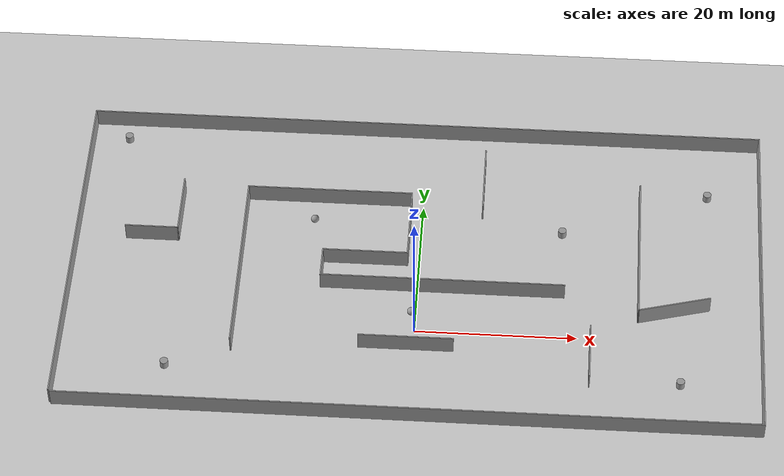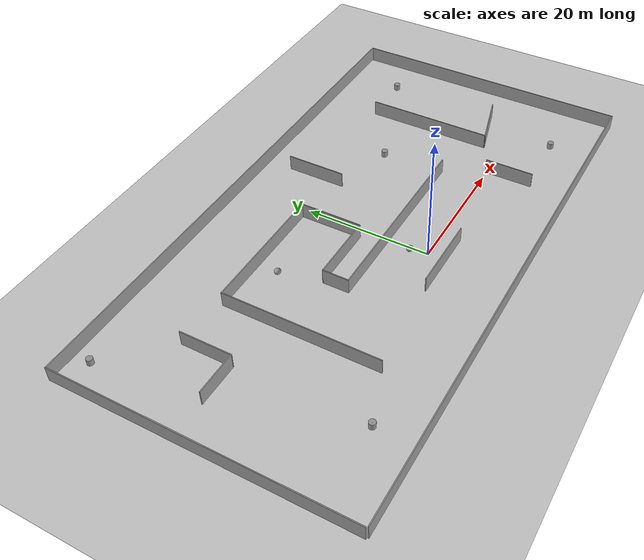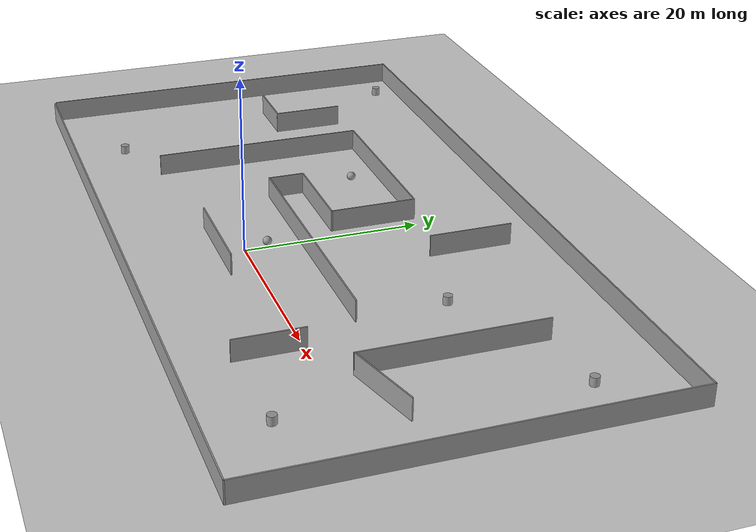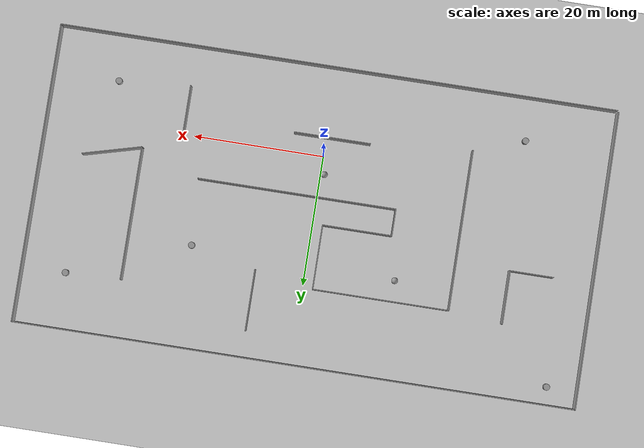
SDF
<sdf version="1.7">
 <world name="default">
  <light name="sun" type="directional">
   <pose>0 0 10 0 -0 0</pose>
   <diffuse>0.8 0.8 0.8 1</diffuse>
   <specular>0.2 0.2 0.2 1</specular>
   <attenuation>
    <range>1000</range>
    <constant>0.9</constant>
    <linear>0.01</linear>
    <quadratic>0.001</quadratic>
   </attenuation>
   <direction>-0.5 0.1 -0.9</direction>
   <spot><inner_angle>0</inner_angle><outer_angle>0</outer_angle><falloff>0</falloff></spot>
  </light>
  <model name="ground_plane">
   <static>1</static>
   <link name="link">
    <collision name="collision">
     <geometry><plane><normal>0 0 1</normal><size>100 100</size></plane></geometry>
     <surface><friction><ode><mu>100</mu><mu2>50</mu2></ode></friction></surface>
    </collision>
    <visual name="visual">
     <cast_shadows>0</cast_shadows>
     <geometry><plane><normal>0 0 1</normal><size>100 100</size></plane></geometry>
     <material>
      <script><uri>file://media/materials/scripts/gazebo.material</uri><name>Gazebo/Grey</name></script>
     </material>
    </visual>
   </link>
  </model>
  <gravity>0 0 -9.8</gravity>
  <magnetic_field>6e-06 2.3e-05 -4.2e-05</magnetic_field>
  <atmosphere type="adiabatic"/>
  <physics type="ode">
   <max_step_size>0.001</max_step_size>
   <real_time_factor>1</real_time_factor>
   <real_time_update_rate>1000</real_time_update_rate>
  </physics>
  <scene><ambient>0.4 0.4 0.4 1</ambient><background>0.7 0.7 0.7 1</background><shadows>1</shadows></scene>
  <audio><device>default</device></audio>
  <spherical_coordinates>
   <surface_model>EARTH_WGS84</surface_model>
   <latitude_deg>0</latitude_deg>
   <longitude_deg>0</longitude_deg>
   <elevation>0</elevation>
   <heading_deg>0</heading_deg>
  </spherical_coordinates>
  <model name="unit_cylinder">
   <pose>-30.212 -7.08888 0.499993 -3e-06 3e-06 0</pose>
   <link name="link">
    <inertial>
     <mass>1</mass>
     <inertia><ixx>0.145833</ixx><ixy>0</ixy><ixz>0</ixz><iyy>0.145833</iyy><iyz>0</iyz><izz>0.125</izz></inertia>
    </inertial>
    <collision name="collision">
     <geometry><cylinder><radius>0.5</radius><length>1</length></cylinder></geometry>
    </collision>
    <visual name="visual">
     <geometry><cylinder><radius>0.5</radius><length>1</length></cylinder></geometry>
     <material>
      <script><name>Gazebo/Grey</name><uri>file://media/materials/scripts/gazebo.material</uri></script>
     </material>
    </visual>
   </link>
  </model>
  <model name="unit_cylinder_0">
   <pose>17.7493 16.5587 0.499997 3e-06 -3e-06 0</pose>
   <link name="link">
    <inertial>
     <mass>1</mass>
     <inertia><ixx>0.145833</ixx><ixy>0</ixy><ixz>0</ixz><iyy>0.145833</iyy><iyz>0</iyz><izz>0.125</izz></inertia>
    </inertial>
    <collision name="collision">
     <geometry><cylinder><radius>0.5</radius><length>1</length></cylinder></geometry>
    </collision>
    <visual name="visual">
     <geometry><cylinder><radius>0.5</radius><length>1</length></cylinder></geometry>
     <material>
      <script><name>Gazebo/Grey</name><uri>file://media/materials/scripts/gazebo.material</uri></script>
     </material>
    </visual>
   </link>
  </model>
  <model name="unit_cylinder_1">
   <pose>32.7291 -6.60218 0.499992 -3e-06 3e-06 0</pose>
   <link name="link">
    <inertial>
     <mass>1</mass>
     <inertia><ixx>0.145833</ixx><ixy>0</ixy><ixz>0</ixz><iyy>0.145833</iyy><iyz>0</iyz><izz>0.125</izz></inertia>
    </inertial>
    <collision name="collision">
     <geometry><cylinder><radius>0.5</radius><length>1</length></cylinder></geometry>
    </collision>
    <visual name="visual">
     <geometry><cylinder><radius>0.5</radius><length>1</length></cylinder></geometry>
     <material>
      <script><name>Gazebo/Grey</name><uri>file://media/materials/scripts/gazebo.material</uri></script>
     </material>
    </visual>
   </link>
  </model>
  <model name="unit_cylinder_2">
   <pose>36.0783 23.6647 0.499992 -3e-06 3e-06 0</pose>
   <link name="link">
    <inertial>
     <mass>1</mass>
     <inertia><ixx>0.145833</ixx><ixy>0</ixy><ixz>0</ixz><iyy>0.145833</iyy><iyz>0</iyz><izz>0.125</izz></inertia>
    </inertial>
    <collision name="collision">
     <geometry><cylinder><radius>0.5</radius><length>1</length></cylinder></geometry>
    </collision>
    <visual name="visual">
     <geometry><cylinder><radius>0.5</radius><length>1</length></cylinder></geometry>
     <material>
      <script><name>Gazebo/Grey</name><uri>file://media/materials/scripts/gazebo.material</uri></script>
     </material>
    </visual>
   </link>
  </model>
  <model name="maze1.world">
   <pose>-0.366336 9.28177 0 0 -0 0</pose>
   <link name="Wall_0">
    <collision name="Wall_0_Collision">
     <geometry><box><size>45.75 0.15 2.5</size></box></geometry>
     <pose>0 0 1.25 0 -0 0</pose>
    </collision>
    <visual name="Wall_0_Visual">
     <pose>0 0 1.25 0 -0 0</pose>
     <geometry><box><size>45.75 0.15 2.5</size></box></geometry>
     <material>
      <script><uri>file://media/materials/scripts/gazebo.material</uri><name>Gazebo/Grey</name></script>
      <ambient>1 1 1 1</ambient>
     </material>
     <meta><layer>0</layer></meta>
    </visual>
    <pose>-43.05 0.125 0 0 -0 1.5708</pose>
   </link>
   <link name="Wall_1">
    <collision name="Wall_1_Collision">
     <geometry><box><size>86.25 0.15 2.5</size></box></geometry>
     <pose>0 0 1.25 0 -0 0</pose>
    </collision>
    <visual name="Wall_1_Visual">
     <pose>0 0 1.25 0 -0 0</pose>
     <geometry><box><size>86.25 0.15 2.5</size></box></geometry>
     <material>
      <script><uri>file://media/materials/scripts/gazebo.material</uri><name>Gazebo/Grey</name></script>
      <ambient>1 1 1 1</ambient>
     </material>
     <meta><layer>0</layer></meta>
    </visual>
    <pose>-3e-06 22.925 0 0 -0 0</pose>
   </link>
   <link name="Wall_10">
    <collision name="Wall_10_Collision">
     <geometry><box><size>30.5 0.15 2.5</size></box></geometry>
     <pose>0 0 1.25 0 -0 0</pose>
    </collision>
    <visual name="Wall_10_Visual">
     <pose>0 0 1.25 0 -0 0</pose>
     <geometry><box><size>30.5 0.15 2.5</size></box></geometry>
     <material>
      <script><uri>file://media/materials/scripts/gazebo.material</uri><name>Gazebo/Grey</name></script>
      <ambient>1 1 1 1</ambient>
     </material>
     <meta><layer>0</layer></meta>
    </visual>
    <pose>3.42051 -2.84481 0 0 -0 0</pose>
   </link>
   <link name="Wall_12">
    <collision name="Wall_12_Collision">
     <geometry><box><size>20.5 0.15 2.5</size></box></geometry>
     <pose>0 0 1.25 0 -0 0</pose>
    </collision>
    <visual name="Wall_12_Visual">
     <pose>0 0 1.25 0 -0 0</pose>
     <geometry><box><size>20.5 0.15 2.5</size></box></geometry>
     <material>
      <script><uri>file://media/materials/scripts/gazebo.material</uri><name>Gazebo/Grey</name></script>
      <ambient>1 1 1 1</ambient>
     </material>
     <meta><layer>0</layer></meta>
    </visual>
    <pose>27.8289 3.92957 0 0 -0 -1.5708</pose>
   </link>
   <link name="Wall_13">
    <collision name="Wall_13_Collision">
     <geometry><box><size>9.25 0.15 2.5</size></box></geometry>
     <pose>0 0 1.25 0 -0 0</pose>
    </collision>
    <visual name="Wall_13_Visual">
     <pose>0 0 1.25 0 -0 0</pose>
     <geometry><box><size>9.25 0.15 2.5</size></box></geometry>
     <material>
      <script><uri>file://media/materials/scripts/gazebo.material</uri><name>Gazebo/Grey</name></script>
      <ambient>1 1 1 1</ambient>
     </material>
     <meta><layer>0</layer></meta>
    </visual>
    <pose>32.2239 -5.0678 0 0 -0 0.261799</pose>
   </link>
   <link name="Wall_2">
    <collision name="Wall_2_Collision">
     <geometry><box><size>46 0.15 2.5</size></box></geometry>
     <pose>0 0 1.25 0 -0 0</pose>
    </collision>
    <visual name="Wall_2_Visual">
     <pose>0 0 1.25 0 -0 0</pose>
     <geometry><box><size>46 0.15 2.5</size></box></geometry>
     <material>
      <script><uri>file://media/materials/scripts/gazebo.material</uri><name>Gazebo/Grey</name></script>
      <ambient>1 1 1 1</ambient>
     </material>
     <meta><layer>0</layer></meta>
    </visual>
    <pose>43.05 0 0 0 -0 -1.5708</pose>
   </link>
   <link name="Wall_27">
    <collision name="Wall_27_Collision">
     <geometry><box><size>6.75 0.15 2.5</size></box></geometry>
     <pose>0 0 1.25 0 -0 0</pose>
    </collision>
    <visual name="Wall_27_Visual">
     <pose>0 0 1.25 0 -0 0</pose>
     <geometry><box><size>6.75 0.15 2.5</size></box></geometry>
     <material>
      <script><uri>file://media/materials/scripts/gazebo.material</uri><name>Gazebo/Grey</name></script>
      <ambient>1 1 1 1</ambient>
     </material>
     <meta><layer>0</layer></meta>
    </visual>
    <pose>-33.5889 3.71509 0 0 -0 0</pose>
   </link>
   <link name="Wall_28">
    <collision name="Wall_28_Collision">
     <geometry><box><size>8.25 0.15 2.5</size></box></geometry>
     <pose>0 0 1.25 0 -0 0</pose>
    </collision>
    <visual name="Wall_28_Visual">
     <pose>0 0 1.25 0 -0 0</pose>
     <geometry><box><size>8.25 0.15 2.5</size></box></geometry>
     <material>
      <script><uri>file://media/materials/scripts/gazebo.material</uri><name>Gazebo/Grey</name></script>
      <ambient>1 1 1 1</ambient>
     </material>
     <meta><layer>0</layer></meta>
    </visual>
    <pose>-30.2889 7.76509 0 0 -0 1.5708</pose>
   </link>
   <link name="Wall_3">
    <collision name="Wall_3_Collision">
     <geometry><box><size>86 0.15 2.5</size></box></geometry>
     <pose>0 0 1.25 0 -0 0</pose>
    </collision>
    <visual name="Wall_3_Visual">
     <pose>0 0 1.25 0 -0 0</pose>
     <geometry><box><size>86 0.15 2.5</size></box></geometry>
     <material>
      <script><uri>file://media/materials/scripts/gazebo.material</uri><name>Gazebo/Grey</name></script>
      <ambient>1 1 1 1</ambient>
     </material>
     <meta><layer>0</layer></meta>
    </visual>
    <pose>0.124997 -22.925 0 0 -0 3.14159</pose>
   </link>
   <link name="Wall_30">
    <collision name="Wall_30_Collision">
     <geometry><box><size>11.75 0.15 2.5</size></box></geometry>
     <pose>0 0 1.25 0 -0 0</pose>
    </collision>
    <visual name="Wall_30_Visual">
     <pose>0 0 1.25 0 -0 0</pose>
     <geometry><box><size>11.75 0.15 2.5</size></box></geometry>
     <material>
      <script><uri>file://media/materials/scripts/gazebo.material</uri><name>Gazebo/Grey</name></script>
      <ambient>1 1 1 1</ambient>
     </material>
     <meta><layer>0</layer></meta>
    </visual>
    <pose>-0.569781 -12.0856 0 0 -0 0</pose>
   </link>
   <link name="Wall_32">
    <collision name="Wall_32_Collision">
     <geometry><box><size>9.5 0.15 2.5</size></box></geometry>
     <pose>0 0 1.25 0 -0 0</pose>
    </collision>
    <visual name="Wall_32_Visual">
     <pose>0 0 1.25 0 -0 0</pose>
     <geometry><box><size>9.5 0.15 2.5</size></box></geometry>
     <material>
      <script><uri>file://media/materials/scripts/gazebo.material</uri><name>Gazebo/Grey</name></script>
      <ambient>1 1 1 1</ambient>
     </material>
     <meta><layer>0</layer></meta>
    </visual>
    <pose>7.91575 14.1914 0 0 -0 -1.5708</pose>
   </link>
   <link name="Wall_34">
    <collision name="Wall_34_Collision">
     <geometry><box><size>7.75 0.15 2.5</size></box></geometry>
     <pose>0 0 1.25 0 -0 0</pose>
    </collision>
    <visual name="Wall_34_Visual">
     <pose>0 0 1.25 0 -0 0</pose>
     <geometry><box><size>7.75 0.15 2.5</size></box></geometry>
     <material>
      <script><uri>file://media/materials/scripts/gazebo.material</uri><name>Gazebo/Grey</name></script>
      <ambient>1 1 1 1</ambient>
     </material>
     <meta><layer>0</layer></meta>
    </visual>
    <pose>21.9848 -12.8553 0 0 -0 -1.5708</pose>
   </link>
   <link name="Wall_5">
    <collision name="Wall_5_Collision">
     <geometry><box><size>24.75 0.15 2.5</size></box></geometry>
     <pose>0 0 1.25 0 -0 0</pose>
    </collision>
    <visual name="Wall_5_Visual">
     <pose>0 0 1.25 0 -0 0</pose>
     <geometry><box><size>24.75 0.15 2.5</size></box></geometry>
     <material>
      <script><uri>file://media/materials/scripts/gazebo.material</uri><name>Gazebo/Grey</name></script>
      <ambient>1 1 1 1</ambient>
     </material>
     <meta><layer>0</layer></meta>
    </visual>
    <pose>-22.0045 -1.1948 0 0 -0 1.5708</pose>
   </link>
   <link name="Wall_6">
    <collision name="Wall_6_Collision">
     <geometry><box><size>21 0.15 2.5</size></box></geometry>
     <pose>0 0 1.25 0 -0 0</pose>
    </collision>
    <visual name="Wall_6_Visual">
     <pose>0 0 1.25 0 -0 0</pose>
     <geometry><box><size>21 0.15 2.5</size></box></geometry>
     <material>
      <script><uri>file://media/materials/scripts/gazebo.material</uri><name>Gazebo/Grey</name></script>
      <ambient>1 1 1 1</ambient>
     </material>
     <meta><layer>0</layer></meta>
    </visual>
    <pose>-11.5795 11.1052 0 0 -0 0</pose>
   </link>
   <link name="Wall_7">
    <collision name="Wall_7_Collision">
     <geometry><box><size>10 0.15 2.5</size></box></geometry>
     <pose>0 0 1.25 0 -0 0</pose>
    </collision>
    <visual name="Wall_7_Visual">
     <pose>0 0 1.25 0 -0 0</pose>
     <geometry><box><size>10 0.15 2.5</size></box></geometry>
     <material>
      <script><uri>file://media/materials/scripts/gazebo.material</uri><name>Gazebo/Grey</name></script>
      <ambient>1 1 1 1</ambient>
     </material>
     <meta><layer>0</layer></meta>
    </visual>
    <pose>-1.15449 6.1802 0 0 -0 -1.5708</pose>
   </link>
   <link name="Wall_8">
    <collision name="Wall_8_Collision">
     <geometry><box><size>10.75 0.15 2.5</size></box></geometry>
     <pose>0 0 1.25 0 -0 0</pose>
    </collision>
    <visual name="Wall_8_Visual">
     <pose>0 0 1.25 0 -0 0</pose>
     <geometry><box><size>10.75 0.15 2.5</size></box></geometry>
     <material>
      <script><uri>file://media/materials/scripts/gazebo.material</uri><name>Gazebo/Grey</name></script>
      <ambient>1 1 1 1</ambient>
     </material>
     <meta><layer>0</layer></meta>
    </visual>
    <pose>-6.45449 1.25519 0 0 -0 3.14159</pose>
   </link>
   <link name="Wall_9">
    <collision name="Wall_9_Collision">
     <geometry><box><size>4.25 0.15 2.5</size></box></geometry>
     <pose>0 0 1.25 0 -0 0</pose>
    </collision>
    <visual name="Wall_9_Visual">
     <pose>0 0 1.25 0 -0 0</pose>
     <geometry><box><size>4.25 0.15 2.5</size></box></geometry>
     <material>
      <script><uri>file://media/materials/scripts/gazebo.material</uri><name>Gazebo/Grey</name></script>
      <ambient>1 1 1 1</ambient>
     </material>
     <meta><layer>0</layer></meta>
    </visual>
    <pose>-11.7545 -0.794806 0 0 -0 -1.5708</pose>
   </link>
   <static>1</static>
  </model>
  <model name="unit_cylinder_3">
   <pose>-38.8784 29.504 0.499997 3e-06 4e-06 -0</pose>
   <link name="link">
    <inertial>
     <mass>1</mass>
     <inertia><ixx>0.145833</ixx><ixy>0</ixy><ixz>0</ixz><iyy>0.145833</iyy><iyz>0</iyz><izz>0.125</izz></inertia>
    </inertial>
    <collision name="collision">
     <geometry><cylinder><radius>0.5</radius><length>1</length></cylinder></geometry>
    </collision>
    <visual name="visual">
     <geometry><cylinder><radius>0.5</radius><length>1</length></cylinder></geometry>
     <material>
      <script><name>Gazebo/Grey</name><uri>file://media/materials/scripts/gazebo.material</uri></script>
     </material>
    </visual>
   </link>
  </model>
  <model name="unit_sphere">
   <pose>-0.576854 2.75371 0.5 0 -0 0</pose>
   <link name="link">
    <inertial>
     <mass>1</mass>
     <inertia><ixx>0.1</ixx><ixy>0</ixy><ixz>0</ixz><iyy>0.1</iyy><iyz>0</iyz><izz>0.1</izz></inertia>
    </inertial>
    <collision name="collision"><geometry><sphere><radius>0.5</radius></sphere></geometry></collision>
    <visual name="visual">
     <geometry><sphere><radius>0.5</radius></sphere></geometry>
     <material>
      <script><name>Gazebo/Grey</name><uri>file://media/materials/scripts/gazebo.material</uri></script>
     </material>
    </visual>
   </link>
  </model>
  <model name="unit_sphere_0">
   <pose>-13.6813 17.1155 0.5 0 -0 0</pose>
   <link name="link">
    <inertial>
     <mass>1</mass>
     <inertia><ixx>0.1</ixx><ixy>0</ixy><ixz>0</ixz><iyy>0.1</iyy><iyz>0</iyz><izz>0.1</izz></inertia>
    </inertial>
    <collision name="collision"><geometry><sphere><radius>0.5</radius></sphere></geometry></collision>
    <visual name="visual">
     <geometry><sphere><radius>0.5</radius></sphere></geometry>
     <material>
      <script><name>Gazebo/Grey</name><uri>file://media/materials/scripts/gazebo.material</uri></script>
     </material>
    </visual>
   </link>
  </model>
 </world>
</sdf>
